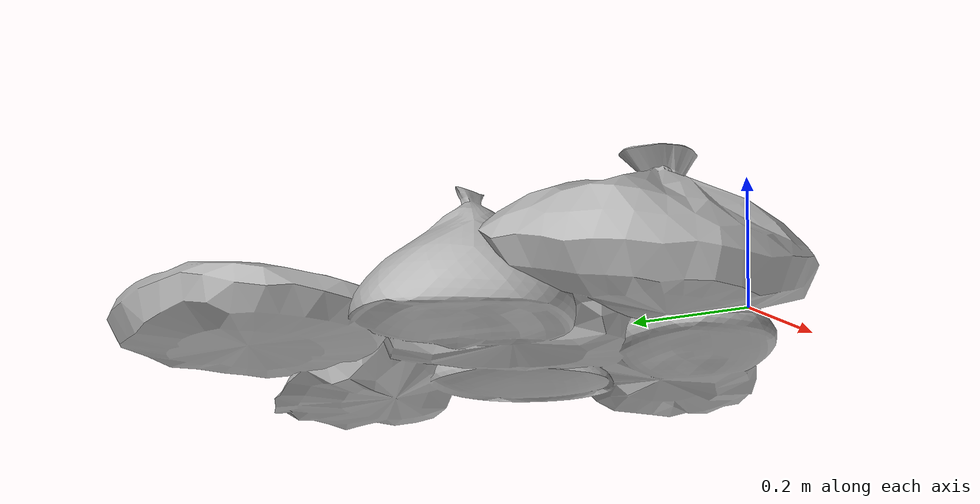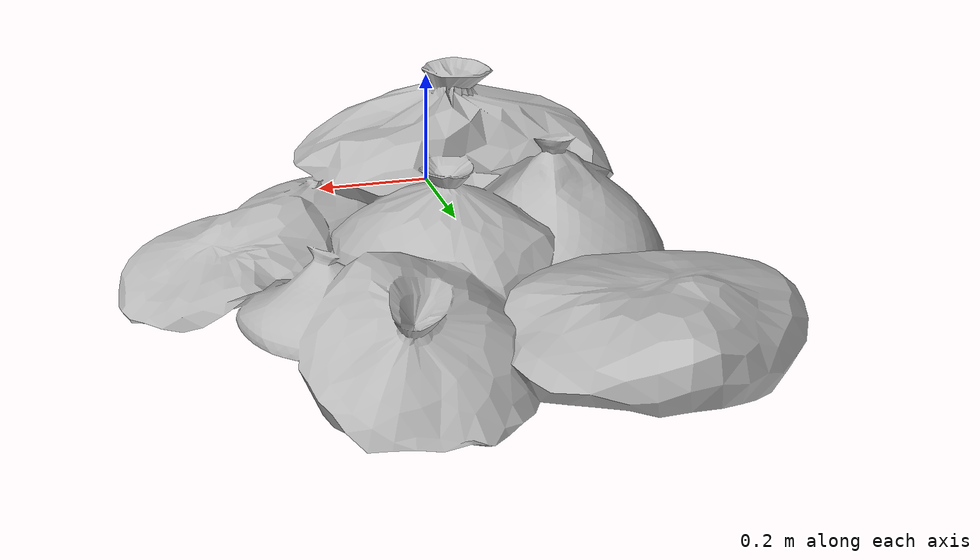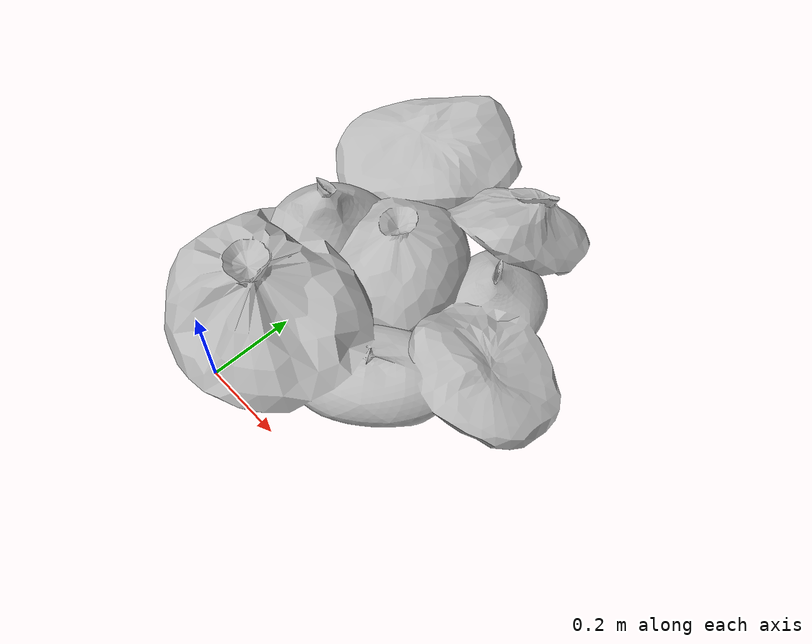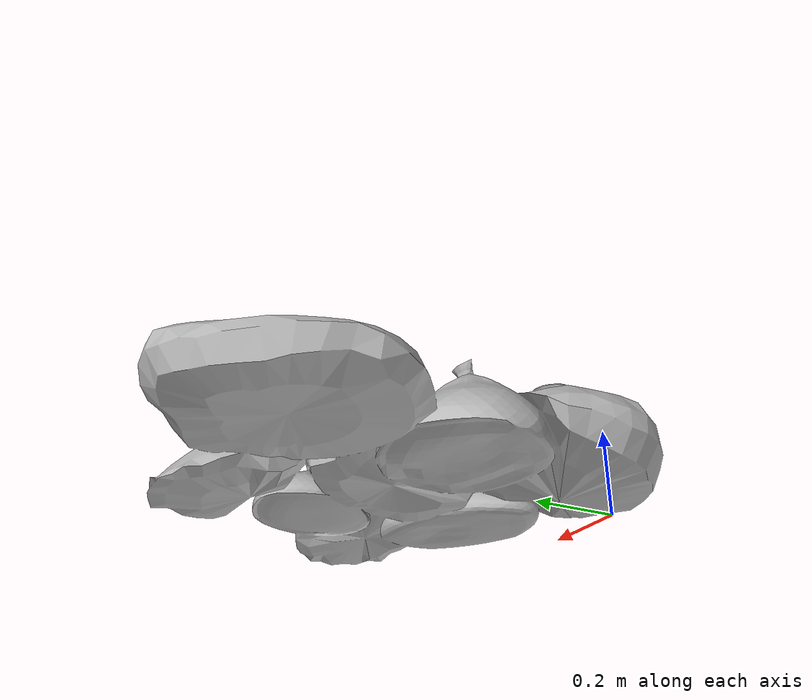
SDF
<sdf version="1.6">
  <model name="GarbagePileV1">
   <static>true</static>
    <link name="body">
      <pose>0 0 0 0 0 0</pose>

      <visual name="visual">
        <geometry>
          <mesh>
            <uri>model://GarbagePileV1/meshes/bags.obj</uri>
          </mesh>
        </geometry>
      </visual>

      <collision name="collision">
        <geometry>
          <mesh>
            <uri>model://GarbagePileV1/meshes/bags.obj</uri>
          </mesh>
        </geometry>
      </collision>

    </link>
  </model>
</sdf>
